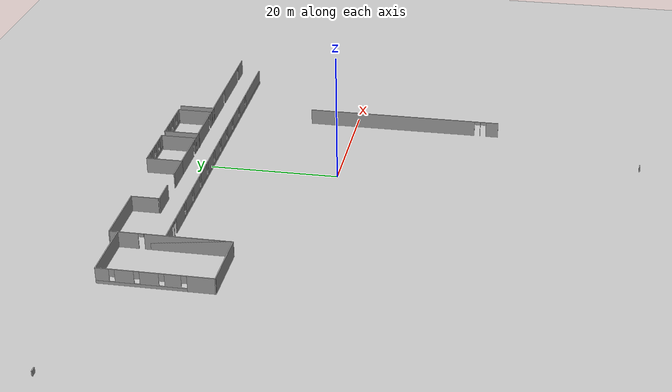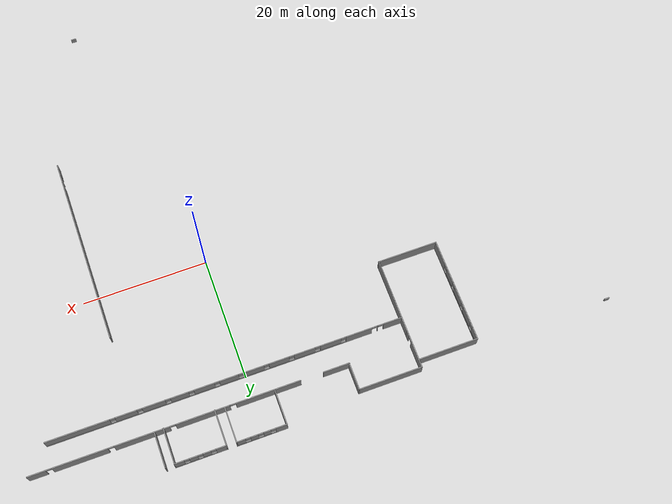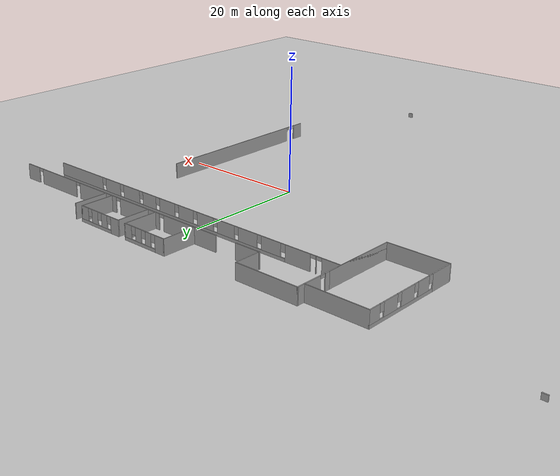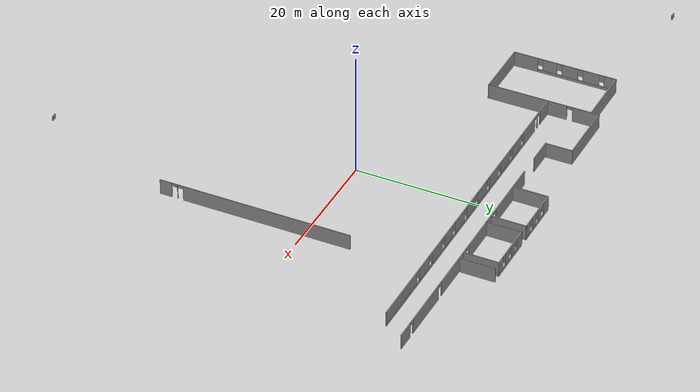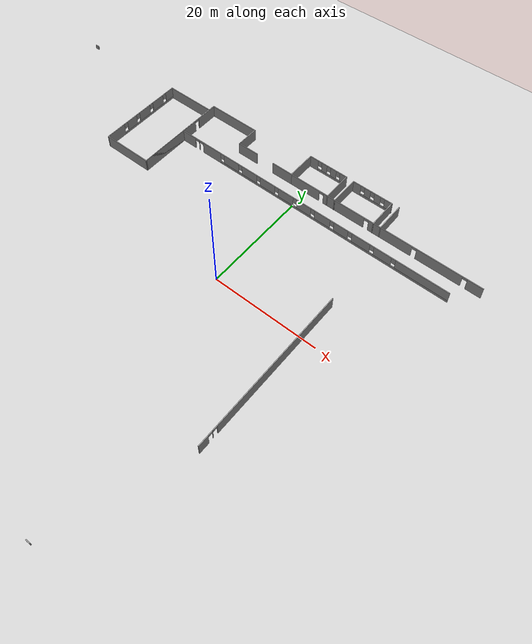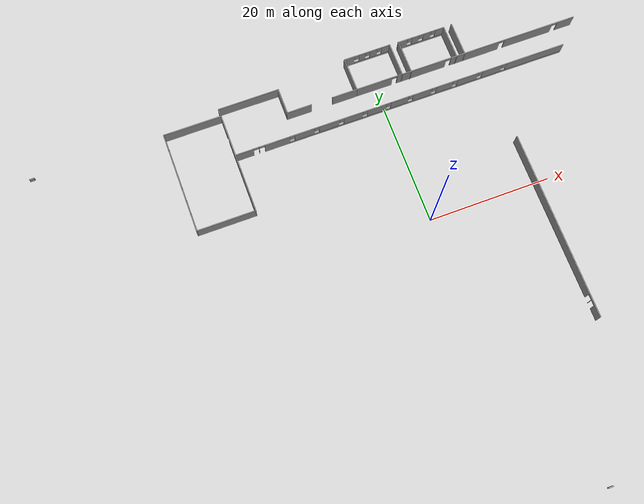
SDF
<sdf version="1.6">
 <world name="default">
  <model name="ground_plane">
   <static>1</static>
   <link name="link">
    <collision name="collision">
     <geometry><plane><normal>0 0 1</normal><size>100 100</size></plane></geometry>
     <surface>
      <contact><collide_bitmask>65535</collide_bitmask></contact>
      <friction><ode><mu>100</mu><mu2>50</mu2></ode></friction>
     </surface>
    </collision>
    <visual name="visual">
     <cast_shadows>0</cast_shadows>
     <geometry><plane><normal>0 0 1</normal><size>100 100</size></plane></geometry>
     <material>
      <script><uri>file://media/materials/scripts/gazebo.material</uri><name>Gazebo/Grey</name></script>
     </material>
    </visual>
   </link>
  </model>
  <model name="firstFloor">
   <pose>-0.116512 3.07366 0 0 -0 0</pose>
   <link name="Wall_0">
    <pose>17.6408 -10.9848 0 0 0 -1.5708</pose>
    <visual name="Wall_0_Visual_0">
     <pose>-1.92288 0 1.25 0 -0 0</pose>
     <geometry><box><size>27.1542 0.15 2.5</size></box></geometry>
     <material>
      <script><uri>file://media/materials/scripts/gazebo.material</uri><name>Gazebo/Grey</name></script>
      <ambient>1 1 1 1</ambient>
     </material>
     <meta><layer>0</layer></meta>
    </visual>
    <collision name="Wall_0_Collision_0">
     <geometry><box><size>27.1542 0.15 2.5</size></box></geometry>
     <pose>-1.92288 0 1.25 0 -0 0</pose>
    </collision>
    <visual name="Wall_0_Visual_1">
     <pose>12.5857 0 1.25 0 -0 0</pose>
     <geometry><box><size>0.062944 0.15 2.5</size></box></geometry>
     <material>
      <script><uri>file://media/materials/scripts/gazebo.material</uri><name>Gazebo/Grey</name></script>
      <ambient>1 1 1 1</ambient>
     </material>
     <meta><layer>0</layer></meta>
    </visual>
    <collision name="Wall_0_Collision_1">
     <geometry><box><size>0.062944 0.15 2.5</size></box></geometry>
     <pose>12.5857 0 1.25 0 -0 0</pose>
    </collision>
    <visual name="Wall_0_Visual_2">
     <pose>14.5086 0 1.25 0 -0 0</pose>
     <geometry><box><size>1.98281 0.15 2.5</size></box></geometry>
     <material>
      <script><uri>file://media/materials/scripts/gazebo.material</uri><name>Gazebo/Grey</name></script>
      <ambient>1 1 1 1</ambient>
     </material>
     <meta><layer>0</layer></meta>
    </visual>
    <collision name="Wall_0_Collision_2">
     <geometry><box><size>1.98281 0.15 2.5</size></box></geometry>
     <pose>14.5086 0 1.25 0 -0 0</pose>
    </collision>
    <visual name="Wall_0_Visual_3">
     <pose>12.1042 0 2.25 0 -0 0</pose>
     <geometry><box><size>0.9 0.15 0.5</size></box></geometry>
     <material>
      <script><uri>file://media/materials/scripts/gazebo.material</uri><name>Gazebo/Grey</name></script>
      <ambient>1 1 1 1</ambient>
     </material>
     <meta><layer>0</layer></meta>
    </visual>
    <collision name="Wall_0_Collision_3">
     <geometry><box><size>0.9 0.15 0.5</size></box></geometry>
     <pose>12.1042 0 2.25 0 -0 0</pose>
    </collision>
    <visual name="Wall_0_Visual_4">
     <pose>13.0672 0 2.25 0 -0 0</pose>
     <geometry><box><size>0.9 0.15 0.5</size></box></geometry>
     <material>
      <script><uri>file://media/materials/scripts/gazebo.material</uri><name>Gazebo/Grey</name></script>
      <ambient>1 1 1 1</ambient>
     </material>
     <meta><layer>0</layer></meta>
    </visual>
    <collision name="Wall_0_Collision_4">
     <geometry><box><size>0.9 0.15 0.5</size></box></geometry>
     <pose>13.0672 0 2.25 0 -0 0</pose>
    </collision>
   </link>
   <link name="Wall_15">
    <pose>2.99839 16.757 0 0 -0 0</pose>
    <visual name="Wall_15_Visual_0">
     <pose>-26.7456 0 1.25 0 -0 0</pose>
     <geometry><box><size>3.00874 0.15 2.5</size></box></geometry>
     <material>
      <script><uri>file://media/materials/scripts/gazebo.material</uri><name>Gazebo/Grey</name></script>
      <ambient>1 1 1 1</ambient>
     </material>
     <meta><layer>0</layer></meta>
    </visual>
    <collision name="Wall_15_Collision_0">
     <geometry><box><size>3.00874 0.15 2.5</size></box></geometry>
     <pose>-26.7456 0 1.25 0 -0 0</pose>
    </collision>
    <visual name="Wall_15_Visual_1">
     <pose>-24.2997 0 1.25 0 -0 0</pose>
     <geometry><box><size>0.083156 0.15 2.5</size></box></geometry>
     <material>
      <script><uri>file://media/materials/scripts/gazebo.material</uri><name>Gazebo/Grey</name></script>
      <ambient>1 1 1 1</ambient>
     </material>
     <meta><layer>0</layer></meta>
    </visual>
    <collision name="Wall_15_Collision_1">
     <geometry><box><size>0.083156 0.15 2.5</size></box></geometry>
     <pose>-24.2997 0 1.25 0 -0 0</pose>
    </collision>
    <visual name="Wall_15_Visual_2">
     <pose>-21.2466 0 1.25 0 -0 0</pose>
     <geometry><box><size>4.22309 0.15 2.5</size></box></geometry>
     <material>
      <script><uri>file://media/materials/scripts/gazebo.material</uri><name>Gazebo/Grey</name></script>
      <ambient>1 1 1 1</ambient>
     </material>
     <meta><layer>0</layer></meta>
    </visual>
    <collision name="Wall_15_Collision_2">
     <geometry><box><size>4.22309 0.15 2.5</size></box></geometry>
     <pose>-21.2466 0 1.25 0 -0 0</pose>
    </collision>
    <visual name="Wall_15_Visual_3">
     <pose>4.55749 0 0.25 0 -0 0</pose>
     <geometry><box><size>47.385 0.15 0.5</size></box></geometry>
     <material>
      <script><uri>file://media/materials/scripts/gazebo.material</uri><name>Gazebo/Grey</name></script>
      <ambient>1 1 1 1</ambient>
     </material>
     <meta><layer>0</layer></meta>
    </visual>
    <collision name="Wall_15_Collision_3">
     <geometry><box><size>47.385 0.15 0.5</size></box></geometry>
     <pose>4.55749 0 0.25 0 -0 0</pose>
    </collision>
    <visual name="Wall_15_Visual_4">
     <pose>-16.6507 0 1.5 0 -0 0</pose>
     <geometry><box><size>3.36858 0.15 2</size></box></geometry>
     <material>
      <script><uri>file://media/materials/scripts/gazebo.material</uri><name>Gazebo/Grey</name></script>
      <ambient>1 1 1 1</ambient>
     </material>
     <meta><layer>0</layer></meta>
    </visual>
    <collision name="Wall_15_Collision_4">
     <geometry><box><size>3.36858 0.15 2</size></box></geometry>
     <pose>-16.6507 0 1.5 0 -0 0</pose>
    </collision>
    <visual name="Wall_15_Visual_5">
     <pose>-12.4625 0 1.5 0 -0 0</pose>
     <geometry><box><size>3.40791 0.15 2</size></box></geometry>
     <material>
      <script><uri>file://media/materials/scripts/gazebo.material</uri><name>Gazebo/Grey</name></script>
      <ambient>1 1 1 1</ambient>
     </material>
     <meta><layer>0</layer></meta>
    </visual>
    <collision name="Wall_15_Collision_5">
     <geometry><box><size>3.40791 0.15 2</size></box></geometry>
     <pose>-12.4625 0 1.5 0 -0 0</pose>
    </collision>
    <visual name="Wall_15_Visual_6">
     <pose>-8.34568 0 1.5 0 -0 0</pose>
     <geometry><box><size>3.2257 0.15 2</size></box></geometry>
     <material>
      <script><uri>file://media/materials/scripts/gazebo.material</uri><name>Gazebo/Grey</name></script>
      <ambient>1 1 1 1</ambient>
     </material>
     <meta><layer>0</layer></meta>
    </visual>
    <collision name="Wall_15_Collision_6">
     <geometry><box><size>3.2257 0.15 2</size></box></geometry>
     <pose>-8.34568 0 1.5 0 -0 0</pose>
    </collision>
    <visual name="Wall_15_Visual_7">
     <pose>-4.31076 0 1.5 0 -0 0</pose>
     <geometry><box><size>3.24413 0.15 2</size></box></geometry>
     <material>
      <script><uri>file://media/materials/scripts/gazebo.material</uri><name>Gazebo/Grey</name></script>
      <ambient>1 1 1 1</ambient>
     </material>
     <meta><layer>0</layer></meta>
    </visual>
    <collision name="Wall_15_Collision_7">
     <geometry><box><size>3.24413 0.15 2</size></box></geometry>
     <pose>-4.31076 0 1.5 0 -0 0</pose>
    </collision>
    <visual name="Wall_15_Visual_8">
     <pose>-0.385574 0 1.5 0 -0 0</pose>
     <geometry><box><size>3.00624 0.15 2</size></box></geometry>
     <material>
      <script><uri>file://media/materials/scripts/gazebo.material</uri><name>Gazebo/Grey</name></script>
      <ambient>1 1 1 1</ambient>
     </material>
     <meta><layer>0</layer></meta>
    </visual>
    <collision name="Wall_15_Collision_8">
     <geometry><box><size>3.00624 0.15 2</size></box></geometry>
     <pose>-0.385574 0 1.5 0 -0 0</pose>
    </collision>
    <visual name="Wall_15_Visual_9">
     <pose>3.53961 0 1.5 0 -0 0</pose>
     <geometry><box><size>3.24413 0.15 2</size></box></geometry>
     <material>
      <script><uri>file://media/materials/scripts/gazebo.material</uri><name>Gazebo/Grey</name></script>
      <ambient>1 1 1 1</ambient>
     </material>
     <meta><layer>0</layer></meta>
    </visual>
    <collision name="Wall_15_Collision_9">
     <geometry><box><size>3.24413 0.15 2</size></box></geometry>
     <pose>3.53961 0 1.5 0 -0 0</pose>
    </collision>
    <visual name="Wall_15_Visual_10">
     <pose>7.39046 0 1.5 0 -0 0</pose>
     <geometry><box><size>2.85756 0.15 2</size></box></geometry>
     <material>
      <script><uri>file://media/materials/scripts/gazebo.material</uri><name>Gazebo/Grey</name></script>
      <ambient>1 1 1 1</ambient>
     </material>
     <meta><layer>0</layer></meta>
    </visual>
    <collision name="Wall_15_Collision_10">
     <geometry><box><size>2.85756 0.15 2</size></box></geometry>
     <pose>7.39046 0 1.5 0 -0 0</pose>
    </collision>
    <visual name="Wall_15_Visual_11">
     <pose>11.4197 0 1.5 0 -0 0</pose>
     <geometry><box><size>3.60097 0.15 2</size></box></geometry>
     <material>
      <script><uri>file://media/materials/scripts/gazebo.material</uri><name>Gazebo/Grey</name></script>
      <ambient>1 1 1 1</ambient>
     </material>
     <meta><layer>0</layer></meta>
    </visual>
    <collision name="Wall_15_Collision_11">
     <geometry><box><size>3.60097 0.15 2</size></box></geometry>
     <pose>11.4197 0 1.5 0 -0 0</pose>
    </collision>
    <visual name="Wall_15_Visual_12">
     <pose>15.7166 0 1.5 0 -0 0</pose>
     <geometry><box><size>3.39282 0.15 2</size></box></geometry>
     <material>
      <script><uri>file://media/materials/scripts/gazebo.material</uri><name>Gazebo/Grey</name></script>
      <ambient>1 1 1 1</ambient>
     </material>
     <meta><layer>0</layer></meta>
    </visual>
    <collision name="Wall_15_Collision_12">
     <geometry><box><size>3.39282 0.15 2</size></box></geometry>
     <pose>15.7166 0 1.5 0 -0 0</pose>
    </collision>
    <visual name="Wall_15_Visual_13">
     <pose>23.2315 0 1.5 0 -0 0</pose>
     <geometry><box><size>10.037 0.15 2</size></box></geometry>
     <material>
      <script><uri>file://media/materials/scripts/gazebo.material</uri><name>Gazebo/Grey</name></script>
      <ambient>1 1 1 1</ambient>
     </material>
     <meta><layer>0</layer></meta>
    </visual>
    <collision name="Wall_15_Collision_13">
     <geometry><box><size>10.037 0.15 2</size></box></geometry>
     <pose>23.2315 0 1.5 0 -0 0</pose>
    </collision>
    <visual name="Wall_15_Visual_14">
     <pose>-18.735 0 1.9 0 -0 0</pose>
     <geometry><box><size>0.8 0.15 1.2</size></box></geometry>
     <material>
      <script><uri>file://media/materials/scripts/gazebo.material</uri><name>Gazebo/Grey</name></script>
      <ambient>1 1 1 1</ambient>
     </material>
     <meta><layer>0</layer></meta>
    </visual>
    <collision name="Wall_15_Collision_14">
     <geometry><box><size>0.8 0.15 1.2</size></box></geometry>
     <pose>-18.735 0 1.9 0 -0 0</pose>
    </collision>
    <visual name="Wall_15_Visual_15">
     <pose>-14.5664 0 1.9 0 -0 0</pose>
     <geometry><box><size>0.8 0.15 1.2</size></box></geometry>
     <material>
      <script><uri>file://media/materials/scripts/gazebo.material</uri><name>Gazebo/Grey</name></script>
      <ambient>1 1 1 1</ambient>
     </material>
     <meta><layer>0</layer></meta>
    </visual>
    <collision name="Wall_15_Collision_15">
     <geometry><box><size>0.8 0.15 1.2</size></box></geometry>
     <pose>-14.5664 0 1.9 0 -0 0</pose>
    </collision>
    <visual name="Wall_15_Visual_16">
     <pose>-10.3585 0 1.9 0 -0 0</pose>
     <geometry><box><size>0.8 0.15 1.2</size></box></geometry>
     <material>
      <script><uri>file://media/materials/scripts/gazebo.material</uri><name>Gazebo/Grey</name></script>
      <ambient>1 1 1 1</ambient>
     </material>
     <meta><layer>0</layer></meta>
    </visual>
    <collision name="Wall_15_Collision_16">
     <geometry><box><size>0.8 0.15 1.2</size></box></geometry>
     <pose>-10.3585 0 1.9 0 -0 0</pose>
    </collision>
    <visual name="Wall_15_Visual_17">
     <pose>-6.33283 0 1.9 0 -0 0</pose>
     <geometry><box><size>0.8 0.15 1.2</size></box></geometry>
     <material>
      <script><uri>file://media/materials/scripts/gazebo.material</uri><name>Gazebo/Grey</name></script>
      <ambient>1 1 1 1</ambient>
     </material>
     <meta><layer>0</layer></meta>
    </visual>
    <collision name="Wall_15_Collision_17">
     <geometry><box><size>0.8 0.15 1.2</size></box></geometry>
     <pose>-6.33283 0 1.9 0 -0 0</pose>
    </collision>
    <visual name="Wall_15_Visual_18">
     <pose>-2.2887 0 1.9 0 -0 0</pose>
     <geometry><box><size>0.8 0.15 1.2</size></box></geometry>
     <material>
      <script><uri>file://media/materials/scripts/gazebo.material</uri><name>Gazebo/Grey</name></script>
      <ambient>1 1 1 1</ambient>
     </material>
     <meta><layer>0</layer></meta>
    </visual>
    <collision name="Wall_15_Collision_18">
     <geometry><box><size>0.8 0.15 1.2</size></box></geometry>
     <pose>-2.2887 0 1.9 0 -0 0</pose>
    </collision>
    <visual name="Wall_15_Visual_19">
     <pose>1.51755 0 1.9 0 -0 0</pose>
     <geometry><box><size>0.8 0.15 1.2</size></box></geometry>
     <material>
      <script><uri>file://media/materials/scripts/gazebo.material</uri><name>Gazebo/Grey</name></script>
      <ambient>1 1 1 1</ambient>
     </material>
     <meta><layer>0</layer></meta>
    </visual>
    <collision name="Wall_15_Collision_19">
     <geometry><box><size>0.8 0.15 1.2</size></box></geometry>
     <pose>1.51755 0 1.9 0 -0 0</pose>
    </collision>
    <visual name="Wall_15_Visual_20">
     <pose>5.56168 0 1.9 0 -0 0</pose>
     <geometry><box><size>0.8 0.15 1.2</size></box></geometry>
     <material>
      <script><uri>file://media/materials/scripts/gazebo.material</uri><name>Gazebo/Grey</name></script>
      <ambient>1 1 1 1</ambient>
     </material>
     <meta><layer>0</layer></meta>
    </visual>
    <collision name="Wall_15_Collision_20">
     <geometry><box><size>0.8 0.15 1.2</size></box></geometry>
     <pose>5.56168 0 1.9 0 -0 0</pose>
    </collision>
    <visual name="Wall_15_Visual_21">
     <pose>9.21925 0 1.9 0 -0 0</pose>
     <geometry><box><size>0.8 0.15 1.2</size></box></geometry>
     <material>
      <script><uri>file://media/materials/scripts/gazebo.material</uri><name>Gazebo/Grey</name></script>
      <ambient>1 1 1 1</ambient>
     </material>
     <meta><layer>0</layer></meta>
    </visual>
    <collision name="Wall_15_Collision_21">
     <geometry><box><size>0.8 0.15 1.2</size></box></geometry>
     <pose>9.21925 0 1.9 0 -0 0</pose>
    </collision>
    <visual name="Wall_15_Visual_22">
     <pose>13.6202 0 1.9 0 -0 0</pose>
     <geometry><box><size>0.8 0.15 1.2</size></box></geometry>
     <material>
      <script><uri>file://media/materials/scripts/gazebo.material</uri><name>Gazebo/Grey</name></script>
      <ambient>1 1 1 1</ambient>
     </material>
     <meta><layer>0</layer></meta>
    </visual>
    <collision name="Wall_15_Collision_22">
     <geometry><box><size>0.8 0.15 1.2</size></box></geometry>
     <pose>13.6202 0 1.9 0 -0 0</pose>
    </collision>
    <visual name="Wall_15_Visual_23">
     <pose>17.813 0 1.9 0 -0 0</pose>
     <geometry><box><size>0.8 0.15 1.2</size></box></geometry>
     <material>
      <script><uri>file://media/materials/scripts/gazebo.material</uri><name>Gazebo/Grey</name></script>
      <ambient>1 1 1 1</ambient>
     </material>
     <meta><layer>0</layer></meta>
    </visual>
    <collision name="Wall_15_Collision_23">
     <geometry><box><size>0.8 0.15 1.2</size></box></geometry>
     <pose>17.813 0 1.9 0 -0 0</pose>
    </collision>
    <visual name="Wall_15_Visual_24">
     <pose>-24.7913 0 2.25 0 -0 0</pose>
     <geometry><box><size>0.9 0.15 0.5</size></box></geometry>
     <material>
      <script><uri>file://media/materials/scripts/gazebo.material</uri><name>Gazebo/Grey</name></script>
      <ambient>1 1 1 1</ambient>
     </material>
     <meta><layer>0</layer></meta>
    </visual>
    <collision name="Wall_15_Collision_24">
     <geometry><box><size>0.9 0.15 0.5</size></box></geometry>
     <pose>-24.7913 0 2.25 0 -0 0</pose>
    </collision>
    <visual name="Wall_15_Visual_25">
     <pose>-23.8081 0 2.25 0 -0 0</pose>
     <geometry><box><size>0.9 0.15 0.5</size></box></geometry>
     <material>
      <script><uri>file://media/materials/scripts/gazebo.material</uri><name>Gazebo/Grey</name></script>
      <ambient>1 1 1 1</ambient>
     </material>
     <meta><layer>0</layer></meta>
    </visual>
    <collision name="Wall_15_Collision_25">
     <geometry><box><size>0.9 0.15 0.5</size></box></geometry>
     <pose>-23.8081 0 2.25 0 -0 0</pose>
    </collision>
   </link>
   <link name="Wall_32">
    <pose>15.7968 20.7947 0 0 -0 3.14159</pose>
    <visual name="Wall_32_Visual_0">
     <pose>-17.6843 0 1.25 0 -0 0</pose>
     <geometry><box><size>2.88139 0.15 2.5</size></box></geometry>
     <material>
      <script><uri>file://media/materials/scripts/gazebo.material</uri><name>Gazebo/Grey</name></script>
      <ambient>1 1 1 1</ambient>
     </material>
     <meta><layer>0</layer></meta>
    </visual>
    <collision name="Wall_32_Collision_0">
     <geometry><box><size>2.88139 0.15 2.5</size></box></geometry>
     <pose>-17.6843 0 1.25 0 -0 0</pose>
    </collision>
    <visual name="Wall_32_Visual_1">
     <pose>-11.0804 0 1.25 0 -0 0</pose>
     <geometry><box><size>8.52647 0.15 2.5</size></box></geometry>
     <material>
      <script><uri>file://media/materials/scripts/gazebo.material</uri><name>Gazebo/Grey</name></script>
      <ambient>1 1 1 1</ambient>
     </material>
     <meta><layer>0</layer></meta>
    </visual>
    <collision name="Wall_32_Collision_1">
     <geometry><box><size>8.52647 0.15 2.5</size></box></geometry>
     <pose>-11.0804 0 1.25 0 -0 0</pose>
    </collision>
    <visual name="Wall_32_Visual_2">
     <pose>-1.63402 0 1.25 0 -0 0</pose>
     <geometry><box><size>8.56625 0.15 2.5</size></box></geometry>
     <material>
      <script><uri>file://media/materials/scripts/gazebo.material</uri><name>Gazebo/Grey</name></script>
      <ambient>1 1 1 1</ambient>
     </material>
     <meta><layer>0</layer></meta>
    </visual>
    <collision name="Wall_32_Collision_2">
     <geometry><box><size>8.56625 0.15 2.5</size></box></geometry>
     <pose>-1.63402 0 1.25 0 -0 0</pose>
    </collision>
    <visual name="Wall_32_Visual_3">
     <pose>7.79245 0 1.25 0 -0 0</pose>
     <geometry><box><size>8.4867 0.15 2.5</size></box></geometry>
     <material>
      <script><uri>file://media/materials/scripts/gazebo.material</uri><name>Gazebo/Grey</name></script>
      <ambient>1 1 1 1</ambient>
     </material>
     <meta><layer>0</layer></meta>
    </visual>
    <collision name="Wall_32_Collision_3">
     <geometry><box><size>8.4867 0.15 2.5</size></box></geometry>
     <pose>7.79245 0 1.25 0 -0 0</pose>
    </collision>
    <visual name="Wall_32_Visual_4">
     <pose>16.0304 0 1.25 0 -0 0</pose>
     <geometry><box><size>6.1892 0.15 2.5</size></box></geometry>
     <material>
      <script><uri>file://media/materials/scripts/gazebo.material</uri><name>Gazebo/Grey</name></script>
      <ambient>1 1 1 1</ambient>
     </material>
     <meta><layer>0</layer></meta>
    </visual>
    <collision name="Wall_32_Collision_4">
     <geometry><box><size>6.1892 0.15 2.5</size></box></geometry>
     <pose>16.0304 0 1.25 0 -0 0</pose>
    </collision>
    <visual name="Wall_32_Visual_5">
     <pose>-15.7936 0 2.25 0 -0 0</pose>
     <geometry><box><size>0.9 0.15 0.5</size></box></geometry>
     <material>
      <script><uri>file://media/materials/scripts/gazebo.material</uri><name>Gazebo/Grey</name></script>
      <ambient>1 1 1 1</ambient>
     </material>
     <meta><layer>0</layer></meta>
    </visual>
    <collision name="Wall_32_Collision_5">
     <geometry><box><size>0.9 0.15 0.5</size></box></geometry>
     <pose>-15.7936 0 2.25 0 -0 0</pose>
    </collision>
    <visual name="Wall_32_Visual_6">
     <pose>-6.36714 0 2.25 0 -0 0</pose>
     <geometry><box><size>0.9 0.15 0.5</size></box></geometry>
     <material>
      <script><uri>file://media/materials/scripts/gazebo.material</uri><name>Gazebo/Grey</name></script>
      <ambient>1 1 1 1</ambient>
     </material>
     <meta><layer>0</layer></meta>
    </visual>
    <collision name="Wall_32_Collision_6">
     <geometry><box><size>0.9 0.15 0.5</size></box></geometry>
     <pose>-6.36714 0 2.25 0 -0 0</pose>
    </collision>
    <visual name="Wall_32_Visual_7">
     <pose>3.0991 0 2.25 0 -0 0</pose>
     <geometry><box><size>0.9 0.15 0.5</size></box></geometry>
     <material>
      <script><uri>file://media/materials/scripts/gazebo.material</uri><name>Gazebo/Grey</name></script>
      <ambient>1 1 1 1</ambient>
     </material>
     <meta><layer>0</layer></meta>
    </visual>
    <collision name="Wall_32_Collision_7">
     <geometry><box><size>0.9 0.15 0.5</size></box></geometry>
     <pose>3.0991 0 2.25 0 -0 0</pose>
    </collision>
    <visual name="Wall_32_Visual_8">
     <pose>12.4858 0 2.25 0 -0 0</pose>
     <geometry><box><size>0.9 0.15 0.5</size></box></geometry>
     <material>
      <script><uri>file://media/materials/scripts/gazebo.material</uri><name>Gazebo/Grey</name></script>
      <ambient>1 1 1 1</ambient>
     </material>
     <meta><layer>0</layer></meta>
    </visual>
    <collision name="Wall_32_Collision_8">
     <geometry><box><size>0.9 0.15 0.5</size></box></geometry>
     <pose>12.4858 0 2.25 0 -0 0</pose>
    </collision>
   </link>
   <link name="Wall_33">
    <collision name="Wall_33_Collision">
     <geometry><box><size>5.75 0.15 2.5</size></box></geometry>
     <pose>0 0 1.25 0 -0 0</pose>
    </collision>
    <visual name="Wall_33_Visual">
     <pose>0 0 1.25 0 -0 0</pose>
     <geometry><box><size>5.75 0.15 2.5</size></box></geometry>
     <material>
      <script><uri>file://media/materials/scripts/gazebo.material</uri><name>Gazebo/Grey</name></script>
      <ambient>1 1 1 1</ambient>
     </material>
     <meta><layer>0</layer></meta>
    </visual>
    <pose>-3.25319 23.5947 0 0 -0 1.5708</pose>
   </link>
   <link name="Wall_34">
    <pose>0.671807 26.3947 0 0 -0 0</pose>
    <visual name="Wall_34_Visual_0">
     <pose>-3.08954 0 1.25 0 -0 0</pose>
     <geometry><box><size>1.82092 0.15 2.5</size></box></geometry>
     <material>
      <script><uri>file://media/materials/scripts/gazebo.material</uri><name>Gazebo/Grey</name></script>
      <ambient>1 1 1 1</ambient>
     </material>
     <meta><layer>0</layer></meta>
    </visual>
    <collision name="Wall_34_Collision_0">
     <geometry><box><size>1.82092 0.15 2.5</size></box></geometry>
     <pose>-3.08954 0 1.25 0 -0 0</pose>
    </collision>
    <visual name="Wall_34_Visual_1">
     <pose>0.910461 0 0.25 0 -0 0</pose>
     <geometry><box><size>6.17908 0.15 0.5</size></box></geometry>
     <material>
      <script><uri>file://media/materials/scripts/gazebo.material</uri><name>Gazebo/Grey</name></script>
      <ambient>1 1 1 1</ambient>
     </material>
     <meta><layer>0</layer></meta>
    </visual>
    <collision name="Wall_34_Collision_1">
     <geometry><box><size>6.17908 0.15 0.5</size></box></geometry>
     <pose>0.910461 0 0.25 0 -0 0</pose>
    </collision>
    <visual name="Wall_34_Visual_2">
     <pose>-0.815585 0 1.5 0 -0 0</pose>
     <geometry><box><size>1.12699 0.15 2</size></box></geometry>
     <material>
      <script><uri>file://media/materials/scripts/gazebo.material</uri><name>Gazebo/Grey</name></script>
      <ambient>1 1 1 1</ambient>
     </material>
     <meta><layer>0</layer></meta>
    </visual>
    <collision name="Wall_34_Collision_2">
     <geometry><box><size>1.12699 0.15 2</size></box></geometry>
     <pose>-0.815585 0 1.5 0 -0 0</pose>
    </collision>
    <visual name="Wall_34_Visual_3">
     <pose>1.15073 0 1.5 0 -0 0</pose>
     <geometry><box><size>1.20564 0.15 2</size></box></geometry>
     <material>
      <script><uri>file://media/materials/scripts/gazebo.material</uri><name>Gazebo/Grey</name></script>
      <ambient>1 1 1 1</ambient>
     </material>
     <meta><layer>0</layer></meta>
    </visual>
    <collision name="Wall_34_Collision_3">
     <geometry><box><size>1.20564 0.15 2</size></box></geometry>
     <pose>1.15073 0 1.5 0 -0 0</pose>
    </collision>
    <visual name="Wall_34_Visual_4">
     <pose>3.27677 0 1.5 0 -0 0</pose>
     <geometry><box><size>1.44646 0.15 2</size></box></geometry>
     <material>
      <script><uri>file://media/materials/scripts/gazebo.material</uri><name>Gazebo/Grey</name></script>
      <ambient>1 1 1 1</ambient>
     </material>
     <meta><layer>0</layer></meta>
    </visual>
    <collision name="Wall_34_Collision_4">
     <geometry><box><size>1.44646 0.15 2</size></box></geometry>
     <pose>3.27677 0 1.5 0 -0 0</pose>
    </collision>
    <visual name="Wall_34_Visual_5">
     <pose>-1.77908 0 1.9 0 -0 0</pose>
     <geometry><box><size>0.8 0.15 1.2</size></box></geometry>
     <material>
      <script><uri>file://media/materials/scripts/gazebo.material</uri><name>Gazebo/Grey</name></script>
      <ambient>1 1 1 1</ambient>
     </material>
     <meta><layer>0</layer></meta>
    </visual>
    <collision name="Wall_34_Collision_5">
     <geometry><box><size>0.8 0.15 1.2</size></box></geometry>
     <pose>-1.77908 0 1.9 0 -0 0</pose>
    </collision>
    <visual name="Wall_34_Visual_6">
     <pose>0.147907 0 1.9 0 -0 0</pose>
     <geometry><box><size>0.8 0.15 1.2</size></box></geometry>
     <material>
      <script><uri>file://media/materials/scripts/gazebo.material</uri><name>Gazebo/Grey</name></script>
      <ambient>1 1 1 1</ambient>
     </material>
     <meta><layer>0</layer></meta>
    </visual>
    <collision name="Wall_34_Collision_6">
     <geometry><box><size>0.8 0.15 1.2</size></box></geometry>
     <pose>0.147907 0 1.9 0 -0 0</pose>
    </collision>
    <visual name="Wall_34_Visual_7">
     <pose>2.15354 0 1.9 0 -0 0</pose>
     <geometry><box><size>0.8 0.15 1.2</size></box></geometry>
     <material>
      <script><uri>file://media/materials/scripts/gazebo.material</uri><name>Gazebo/Grey</name></script>
      <ambient>1 1 1 1</ambient>
     </material>
     <meta><layer>0</layer></meta>
    </visual>
    <collision name="Wall_34_Collision_7">
     <geometry><box><size>0.8 0.15 1.2</size></box></geometry>
     <pose>2.15354 0 1.9 0 -0 0</pose>
    </collision>
   </link>
   <link name="Wall_35">
    <collision name="Wall_35_Collision">
     <geometry><box><size>5.75 0.15 2.5</size></box></geometry>
     <pose>0 0 1.25 0 -0 0</pose>
    </collision>
    <visual name="Wall_35_Visual">
     <pose>0 0 1.25 0 -0 0</pose>
     <geometry><box><size>5.75 0.15 2.5</size></box></geometry>
     <material>
      <script><uri>file://media/materials/scripts/gazebo.material</uri><name>Gazebo/Grey</name></script>
      <ambient>1 1 1 1</ambient>
     </material>
     <meta><layer>0</layer></meta>
    </visual>
    <pose>4.59681 23.5947 0 0 0 -1.5708</pose>
   </link>
   <link name="Wall_42">
    <collision name="Wall_42_Collision">
     <geometry><box><size>5.75 0.15 2.5</size></box></geometry>
     <pose>0 0 1.25 0 -0 0</pose>
    </collision>
    <visual name="Wall_42_Visual">
     <pose>0 0 1.25 0 -0 0</pose>
     <geometry><box><size>5.75 0.15 2.5</size></box></geometry>
     <material>
      <script><uri>file://media/materials/scripts/gazebo.material</uri><name>Gazebo/Grey</name></script>
      <ambient>1 1 1 1</ambient>
     </material>
     <meta><layer>0</layer></meta>
    </visual>
    <pose>6.13497 23.5303 0 0 -0 1.5708</pose>
   </link>
   <link name="Wall_43">
    <pose>10.1395 26.3303 0 0 -0 0</pose>
    <visual name="Wall_43_Visual_0">
     <pose>-3.23474 0 1.25 0 -0 0</pose>
     <geometry><box><size>1.68961 0.15 2.5</size></box></geometry>
     <material>
      <script><uri>file://media/materials/scripts/gazebo.material</uri><name>Gazebo/Grey</name></script>
      <ambient>1 1 1 1</ambient>
     </material>
     <meta><layer>0</layer></meta>
    </visual>
    <collision name="Wall_43_Collision_0">
     <geometry><box><size>1.68961 0.15 2.5</size></box></geometry>
     <pose>-3.23474 0 1.25 0 -0 0</pose>
    </collision>
    <visual name="Wall_43_Visual_1">
     <pose>0.844804 0 0.25 0 -0 0</pose>
     <geometry><box><size>6.46949 0.15 0.5</size></box></geometry>
     <material>
      <script><uri>file://media/materials/scripts/gazebo.material</uri><name>Gazebo/Grey</name></script>
      <ambient>1 1 1 1</ambient>
     </material>
     <meta><layer>0</layer></meta>
    </visual>
    <collision name="Wall_43_Collision_1">
     <geometry><box><size>6.46949 0.15 0.5</size></box></geometry>
     <pose>0.844804 0 0.25 0 -0 0</pose>
    </collision>
    <visual name="Wall_43_Visual_2">
     <pose>-0.975766 0 1.5 0 -0 0</pose>
     <geometry><box><size>1.22835 0.15 2</size></box></geometry>
     <material>
      <script><uri>file://media/materials/scripts/gazebo.material</uri><name>Gazebo/Grey</name></script>
      <ambient>1 1 1 1</ambient>
     </material>
     <meta><layer>0</layer></meta>
    </visual>
    <collision name="Wall_43_Collision_2">
     <geometry><box><size>1.22835 0.15 2</size></box></geometry>
     <pose>-0.975766 0 1.5 0 -0 0</pose>
    </collision>
    <visual name="Wall_43_Visual_3">
     <pose>1.07859 0 1.5 0 -0 0</pose>
     <geometry><box><size>1.28036 0.15 2</size></box></geometry>
     <material>
      <script><uri>file://media/materials/scripts/gazebo.material</uri><name>Gazebo/Grey</name></script>
      <ambient>1 1 1 1</ambient>
     </material>
     <meta><layer>0</layer></meta>
    </visual>
    <collision name="Wall_43_Collision_3">
     <geometry><box><size>1.28036 0.15 2</size></box></geometry>
     <pose>1.07859 0 1.5 0 -0 0</pose>
    </collision>
    <visual name="Wall_43_Visual_4">
     <pose>3.29916 0 1.5 0 -0 0</pose>
     <geometry><box><size>1.56078 0.15 2</size></box></geometry>
     <material>
      <script><uri>file://media/materials/scripts/gazebo.material</uri><name>Gazebo/Grey</name></script>
      <ambient>1 1 1 1</ambient>
     </material>
     <meta><layer>0</layer></meta>
    </visual>
    <collision name="Wall_43_Collision_4">
     <geometry><box><size>1.56078 0.15 2</size></box></geometry>
     <pose>3.29916 0 1.5 0 -0 0</pose>
    </collision>
    <visual name="Wall_43_Visual_5">
     <pose>-1.98994 0 1.9 0 -0 0</pose>
     <geometry><box><size>0.8 0.15 1.2</size></box></geometry>
     <material>
      <script><uri>file://media/materials/scripts/gazebo.material</uri><name>Gazebo/Grey</name></script>
      <ambient>1 1 1 1</ambient>
     </material>
     <meta><layer>0</layer></meta>
    </visual>
    <collision name="Wall_43_Collision_5">
     <geometry><box><size>0.8 0.15 1.2</size></box></geometry>
     <pose>-1.98994 0 1.9 0 -0 0</pose>
    </collision>
    <visual name="Wall_43_Visual_6">
     <pose>0.038408 0 1.9 0 -0 0</pose>
     <geometry><box><size>0.8 0.15 1.2</size></box></geometry>
     <material>
      <script><uri>file://media/materials/scripts/gazebo.material</uri><name>Gazebo/Grey</name></script>
      <ambient>1 1 1 1</ambient>
     </material>
     <meta><layer>0</layer></meta>
    </visual>
    <collision name="Wall_43_Collision_6">
     <geometry><box><size>0.8 0.15 1.2</size></box></geometry>
     <pose>0.038408 0 1.9 0 -0 0</pose>
    </collision>
    <visual name="Wall_43_Visual_7">
     <pose>2.11877 0 1.9 0 -0 0</pose>
     <geometry><box><size>0.8 0.15 1.2</size></box></geometry>
     <material>
      <script><uri>file://media/materials/scripts/gazebo.material</uri><name>Gazebo/Grey</name></script>
      <ambient>1 1 1 1</ambient>
     </material>
     <meta><layer>0</layer></meta>
    </visual>
    <collision name="Wall_43_Collision_7">
     <geometry><box><size>0.8 0.15 1.2</size></box></geometry>
     <pose>2.11877 0 1.9 0 -0 0</pose>
    </collision>
   </link>
   <link name="Wall_44">
    <collision name="Wall_44_Collision">
     <geometry><box><size>5.75 0.15 2.5</size></box></geometry>
     <pose>0 0 1.25 0 -0 0</pose>
    </collision>
    <visual name="Wall_44_Visual">
     <pose>0 0 1.25 0 -0 0</pose>
     <geometry><box><size>5.75 0.15 2.5</size></box></geometry>
     <material>
      <script><uri>file://media/materials/scripts/gazebo.material</uri><name>Gazebo/Grey</name></script>
      <ambient>1 1 1 1</ambient>
     </material>
     <meta><layer>0</layer></meta>
    </visual>
    <pose>14.1043 23.5303 0 0 0 -1.5708</pose>
   </link>
   <link name="Wall_46">
    <collision name="Wall_46_Collision">
     <geometry><box><size>5.75 0.15 2.5</size></box></geometry>
     <pose>0 0 1.25 0 -0 0</pose>
    </collision>
    <visual name="Wall_46_Visual">
     <pose>0 0 1.25 0 -0 0</pose>
     <geometry><box><size>5.75 0.15 2.5</size></box></geometry>
     <material>
      <script><uri>file://media/materials/scripts/gazebo.material</uri><name>Gazebo/Grey</name></script>
      <ambient>1 1 1 1</ambient>
     </material>
     <meta><layer>0</layer></meta>
    </visual>
    <pose>15.5217 23.5782 0 0 0 -1.5708</pose>
   </link>
   <link name="Wall_56">
    <collision name="Wall_56_Collision">
     <geometry><box><size>10.25 0.15 2.5</size></box></geometry>
     <pose>0 0 1.25 0 -0 0</pose>
    </collision>
    <visual name="Wall_56_Visual">
     <pose>0 0 1.25 0 -0 0</pose>
     <geometry><box><size>10.25 0.15 2.5</size></box></geometry>
     <material>
      <script><uri>file://media/materials/scripts/gazebo.material</uri><name>Gazebo/Grey</name></script>
      <ambient>1 1 1 1</ambient>
     </material>
     <meta><layer>0</layer></meta>
    </visual>
    <pose>-20.1968 25.1054 0 0 -0 0</pose>
   </link>
   <link name="Wall_57">
    <collision name="Wall_57_Collision">
     <geometry><box><size>4.25 0.15 2.5</size></box></geometry>
     <pose>0 0 1.25 0 -0 0</pose>
    </collision>
    <visual name="Wall_57_Visual">
     <pose>0 0 1.25 0 -0 0</pose>
     <geometry><box><size>4.25 0.15 2.5</size></box></geometry>
     <material>
      <script><uri>file://media/materials/scripts/gazebo.material</uri><name>Gazebo/Grey</name></script>
      <ambient>1 1 1 1</ambient>
     </material>
     <meta><layer>0</layer></meta>
    </visual>
    <pose>-15.1468 23.0554 0 0 0 -1.5708</pose>
   </link>
   <link name="Wall_59">
    <pose>-25.2468 16.0554 0 0 0 -1.5708</pose>
    <visual name="Wall_59_Visual_0">
     <pose>-6.94813 0 1.25 0 -0 0</pose>
     <geometry><box><size>4.35374 0.15 2.5</size></box></geometry>
     <material>
      <script><uri>file://media/materials/scripts/gazebo.material</uri><name>Gazebo/Grey</name></script>
      <ambient>1 1 1 1</ambient>
     </material>
     <meta><layer>0</layer></meta>
    </visual>
    <collision name="Wall_59_Collision_0">
     <geometry><box><size>4.35374 0.15 2.5</size></box></geometry>
     <pose>-6.94813 0 1.25 0 -0 0</pose>
    </collision>
    <visual name="Wall_59_Visual_1">
     <pose>2.62687 0 1.25 0 -0 0</pose>
     <geometry><box><size>12.9963 0.15 2.5</size></box></geometry>
     <material>
      <script><uri>file://media/materials/scripts/gazebo.material</uri><name>Gazebo/Grey</name></script>
      <ambient>1 1 1 1</ambient>
     </material>
     <meta><layer>0</layer></meta>
    </visual>
    <collision name="Wall_59_Collision_1">
     <geometry><box><size>12.9963 0.15 2.5</size></box></geometry>
     <pose>2.62687 0 1.25 0 -0 0</pose>
    </collision>
    <visual name="Wall_59_Visual_2">
     <pose>3.05031 0 1.25 0 -0 0</pose>
     <geometry><box><size>12.1494 0.15 2.5</size></box></geometry>
     <material>
      <script><uri>file://media/materials/scripts/gazebo.material</uri><name>Gazebo/Grey</name></script>
      <ambient>1 1 1 1</ambient>
     </material>
     <meta><layer>0</layer></meta>
    </visual>
    <collision name="Wall_59_Collision_2">
     <geometry><box><size>12.1494 0.15 2.5</size></box></geometry>
     <pose>3.05031 0 1.25 0 -0 0</pose>
    </collision>
    <visual name="Wall_59_Visual_3">
     <pose>-4.34782 0 2.25 0 -0 0</pose>
     <geometry><box><size>0.846882 0.15 0.5</size></box></geometry>
     <material>
      <script><uri>file://media/materials/scripts/gazebo.material</uri><name>Gazebo/Grey</name></script>
      <ambient>1 1 1 1</ambient>
     </material>
     <meta><layer>0</layer></meta>
    </visual>
    <collision name="Wall_59_Collision_3">
     <geometry><box><size>0.846882 0.15 0.5</size></box></geometry>
     <pose>-4.34782 0 2.25 0 -0 0</pose>
    </collision>
   </link>
   <link name="Wall_60">
    <collision name="Wall_60_Collision">
     <geometry><box><size>9.75 0.15 2.5</size></box></geometry>
     <pose>0 0 1.25 0 -0 0</pose>
    </collision>
    <visual name="Wall_60_Visual">
     <pose>0 0 1.25 0 -0 0</pose>
     <geometry><box><size>9.75 0.15 2.5</size></box></geometry>
     <material>
      <script><uri>file://media/materials/scripts/gazebo.material</uri><name>Gazebo/Grey</name></script>
      <ambient>1 1 1 1</ambient>
     </material>
     <meta><layer>0</layer></meta>
    </visual>
    <pose>-30.0468 7.00542 0 0 -0 3.14159</pose>
   </link>
   <link name="Wall_61">
    <pose>-34.8468 15.4304 0 0 -0 1.5708</pose>
    <visual name="Wall_61_Visual_0">
     <pose>-6.47123 0 1.25 0 -0 0</pose>
     <geometry><box><size>4.05754 0.15 2.5</size></box></geometry>
     <material>
      <script><uri>file://media/materials/scripts/gazebo.material</uri><name>Gazebo/Grey</name></script>
      <ambient>1 1 1 1</ambient>
     </material>
     <meta><layer>0</layer></meta>
    </visual>
    <collision name="Wall_61_Collision_0">
     <geometry><box><size>4.05754 0.15 2.5</size></box></geometry>
     <pose>-6.47123 0 1.25 0 -0 0</pose>
    </collision>
    <visual name="Wall_61_Visual_1">
     <pose>2.02877 0 0.25 0 -0 0</pose>
     <geometry><box><size>12.9425 0.15 0.5</size></box></geometry>
     <material>
      <script><uri>file://media/materials/scripts/gazebo.material</uri><name>Gazebo/Grey</name></script>
      <ambient>1 1 1 1</ambient>
     </material>
     <meta><layer>0</layer></meta>
    </visual>
    <collision name="Wall_61_Collision_1">
     <geometry><box><size>12.9425 0.15 0.5</size></box></geometry>
     <pose>2.02877 0 0.25 0 -0 0</pose>
    </collision>
    <visual name="Wall_61_Visual_2">
     <pose>-2.46914 0 1.5 0 -0 0</pose>
     <geometry><box><size>2.34665 0.15 2</size></box></geometry>
     <material>
      <script><uri>file://media/materials/scripts/gazebo.material</uri><name>Gazebo/Grey</name></script>
      <ambient>1 1 1 1</ambient>
     </material>
     <meta><layer>0</layer></meta>
    </visual>
    <collision name="Wall_61_Collision_2">
     <geometry><box><size>2.34665 0.15 2</size></box></geometry>
     <pose>-2.46914 0 1.5 0 -0 0</pose>
    </collision>
    <visual name="Wall_61_Visual_3">
     <pose>0.858118 0 1.5 0 -0 0</pose>
     <geometry><box><size>2.70787 0.15 2</size></box></geometry>
     <material>
      <script><uri>file://media/materials/scripts/gazebo.material</uri><name>Gazebo/Grey</name></script>
      <ambient>1 1 1 1</ambient>
     </material>
     <meta><layer>0</layer></meta>
    </visual>
    <collision name="Wall_61_Collision_3">
     <geometry><box><size>2.70787 0.15 2</size></box></geometry>
     <pose>0.858118 0 1.5 0 -0 0</pose>
    </collision>
    <visual name="Wall_61_Visual_4">
     <pose>4.36599 0 1.5 0 -0 0</pose>
     <geometry><box><size>2.70787 0.15 2</size></box></geometry>
     <material>
      <script><uri>file://media/materials/scripts/gazebo.material</uri><name>Gazebo/Grey</name></script>
      <ambient>1 1 1 1</ambient>
     </material>
     <meta><layer>0</layer></meta>
    </visual>
    <collision name="Wall_61_Collision_4">
     <geometry><box><size>2.70787 0.15 2</size></box></geometry>
     <pose>4.36599 0 1.5 0 -0 0</pose>
    </collision>
    <visual name="Wall_61_Visual_5">
     <pose>7.50996 0 1.5 0 -0 0</pose>
     <geometry><box><size>1.98007 0.15 2</size></box></geometry>
     <material>
      <script><uri>file://media/materials/scripts/gazebo.material</uri><name>Gazebo/Grey</name></script>
      <ambient>1 1 1 1</ambient>
     </material>
     <meta><layer>0</layer></meta>
    </visual>
    <collision name="Wall_61_Collision_5">
     <geometry><box><size>1.98007 0.15 2</size></box></geometry>
     <pose>7.50996 0 1.5 0 -0 0</pose>
    </collision>
    <visual name="Wall_61_Visual_6">
     <pose>-4.04246 0 1.9 0 -0 0</pose>
     <geometry><box><size>0.8 0.15 1.2</size></box></geometry>
     <material>
      <script><uri>file://media/materials/scripts/gazebo.material</uri><name>Gazebo/Grey</name></script>
      <ambient>1 1 1 1</ambient>
     </material>
     <meta><layer>0</layer></meta>
    </visual>
    <collision name="Wall_61_Collision_6">
     <geometry><box><size>0.8 0.15 1.2</size></box></geometry>
     <pose>-4.04246 0 1.9 0 -0 0</pose>
    </collision>
    <visual name="Wall_61_Visual_7">
     <pose>-0.895819 0 1.9 0 -0 0</pose>
     <geometry><box><size>0.8 0.15 1.2</size></box></geometry>
     <material>
      <script><uri>file://media/materials/scripts/gazebo.material</uri><name>Gazebo/Grey</name></script>
      <ambient>1 1 1 1</ambient>
     </material>
     <meta><layer>0</layer></meta>
    </visual>
    <collision name="Wall_61_Collision_7">
     <geometry><box><size>0.8 0.15 1.2</size></box></geometry>
     <pose>-0.895819 0 1.9 0 -0 0</pose>
    </collision>
    <visual name="Wall_61_Visual_8">
     <pose>2.61205 0 1.9 0 -0 0</pose>
     <geometry><box><size>0.8 0.15 1.2</size></box></geometry>
     <material>
      <script><uri>file://media/materials/scripts/gazebo.material</uri><name>Gazebo/Grey</name></script>
      <ambient>1 1 1 1</ambient>
     </material>
     <meta><layer>0</layer></meta>
    </visual>
    <collision name="Wall_61_Collision_8">
     <geometry><box><size>0.8 0.15 1.2</size></box></geometry>
     <pose>2.61205 0 1.9 0 -0 0</pose>
    </collision>
    <visual name="Wall_61_Visual_9">
     <pose>6.11993 0 1.9 0 -0 0</pose>
     <geometry><box><size>0.8 0.15 1.2</size></box></geometry>
     <material>
      <script><uri>file://media/materials/scripts/gazebo.material</uri><name>Gazebo/Grey</name></script>
      <ambient>1 1 1 1</ambient>
     </material>
     <meta><layer>0</layer></meta>
    </visual>
    <collision name="Wall_61_Collision_9">
     <geometry><box><size>0.8 0.15 1.2</size></box></geometry>
     <pose>6.11993 0 1.9 0 -0 0</pose>
    </collision>
   </link>
   <link name="Wall_62">
    <collision name="Wall_62_Collision">
     <geometry><box><size>9.75 0.15 2.5</size></box></geometry>
     <pose>0 0 1.25 0 -0 0</pose>
    </collision>
    <visual name="Wall_62_Visual">
     <pose>0 0 1.25 0 -0 0</pose>
     <geometry><box><size>9.75 0.15 2.5</size></box></geometry>
     <material>
      <script><uri>file://media/materials/scripts/gazebo.material</uri><name>Gazebo/Grey</name></script>
      <ambient>1 1 1 1</ambient>
     </material>
     <meta><layer>0</layer></meta>
    </visual>
    <pose>-30.0468 23.8554 0 0 -0 0</pose>
   </link>
   <link name="Wall_67">
    <collision name="Wall_67_Collision">
     <geometry><box><size>4.25 0.15 2.5</size></box></geometry>
     <pose>0 0 1.25 0 -0 0</pose>
    </collision>
    <visual name="Wall_67_Visual">
     <pose>0 0 1.25 0 -0 0</pose>
     <geometry><box><size>4.25 0.15 2.5</size></box></geometry>
     <material>
      <script><uri>file://media/materials/scripts/gazebo.material</uri><name>Gazebo/Grey</name></script>
      <ambient>1 1 1 1</ambient>
     </material>
     <meta><layer>0</layer></meta>
    </visual>
    <pose>-13.1217 20.7789 0 0 -0 0</pose>
   </link>
   <link name="Wall_69">
    <collision name="Wall_69_Collision">
     <geometry><box><size>4.25 0.15 2.5</size></box></geometry>
     <pose>0 0 1.25 0 -0 0</pose>
    </collision>
    <visual name="Wall_69_Visual">
     <pose>0 0 1.25 0 -0 0</pose>
     <geometry><box><size>4.25 0.15 2.5</size></box></geometry>
     <material>
      <script><uri>file://media/materials/scripts/gazebo.material</uri><name>Gazebo/Grey</name></script>
      <ambient>1 1 1 1</ambient>
     </material>
     <meta><layer>0</layer></meta>
    </visual>
    <pose>-5.30319 20.7947 0 0 -0 3.14159</pose>
   </link>
   <link name="Window_1">
    <collision name="Window_1_Collision">
     <geometry><box><size>0.8 0.17 0.8</size></box></geometry>
     <pose>0 0 0.4 0 -0 0</pose>
    </collision>
    <visual name="Window_1_Visual">
     <pose>0 0 0.4 0 -0 0</pose>
     <geometry><box><size>0.8 0.17 0.8</size></box></geometry>
     <material>
      <script><uri>file://media/materials/scripts/gazebo.material</uri><name>Gazebo/Grey</name></script>
     </material>
    </visual>
    <pose>-56.569 24.4379 0.5 0 -0 0</pose>
   </link>
   <link name="Window_30">
    <collision name="Window_30_Collision">
     <geometry><box><size>0.8 0.17 0.8</size></box></geometry>
     <pose>0 0 0.4 0 -0 0</pose>
    </collision>
    <visual name="Window_30_Visual">
     <pose>0 0 0.4 0 -0 0</pose>
     <geometry><box><size>0.8 0.17 0.8</size></box></geometry>
     <material>
      <script><uri>file://media/materials/scripts/gazebo.material</uri><name>Gazebo/Grey</name></script>
     </material>
    </visual>
    <pose>8.92505 -49.3637 0.5 0 -0 0</pose>
   </link>
   <static>1</static>
  </model>
 </world>
</sdf>
